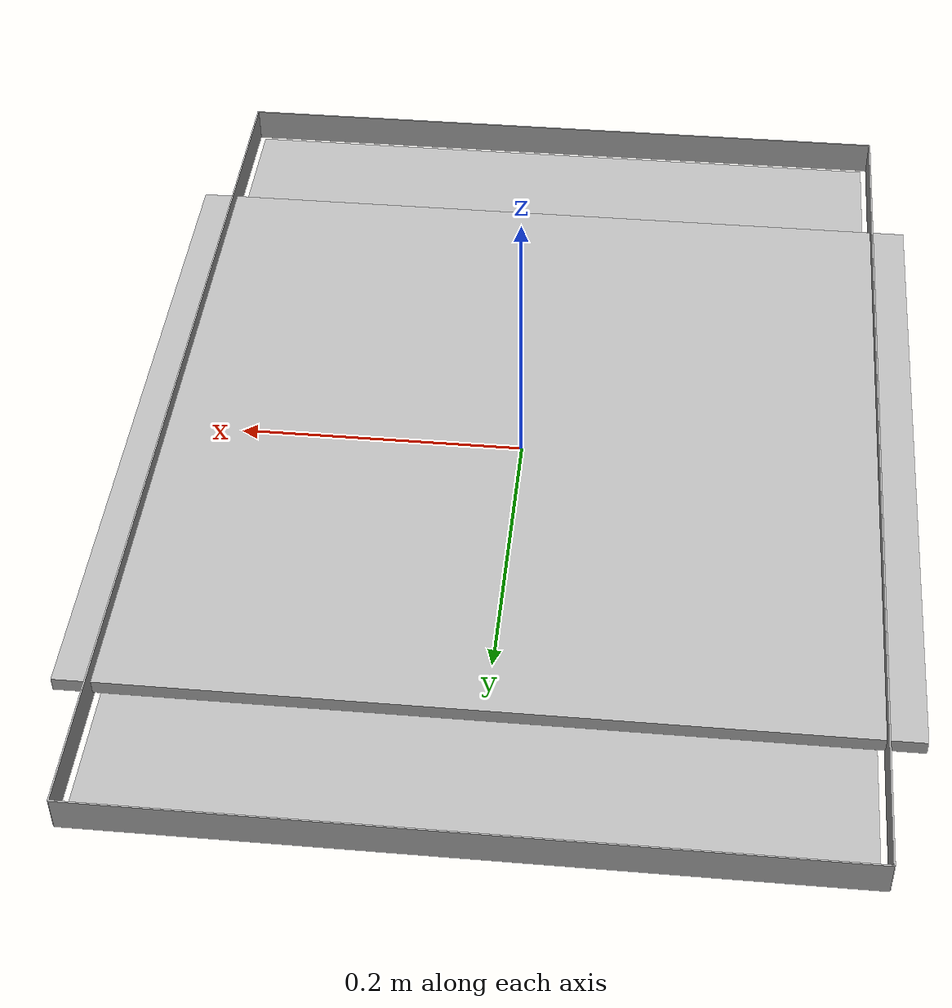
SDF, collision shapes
<?xml version="1.0" ?>
<sdf version="1.6">
<model name="shipping_box_ariac">
    <allow_auto_disable>0</allow_auto_disable>
      <static>false</static>
    <!-- add the model for the structure (no sensors) -->
      <include>
        <name>box</name>
        <uri>model://open_box</uri>
      </include>

    <!-- add a link that is sensing collisions (the bottom of the box) -->
    <link name="bottom_link">
      <pose frame=''>0 0 0.01 0 0 0</pose>
      <gravity>false</gravity>
      <collision name="box_collision">
        <max_contacts>10</max_contacts>
        <surface>
          <contact>
            <ode>
              <max_vel>0.0</max_vel>
              <min_depth>0.001</min_depth>
            </ode>
          </contact>
        </surface>
        <geometry>
          <box>
            <size>0.55 0.5 0.01</size>
          </box>
        </geometry>
      </collision>
      <visual name='visual'>
        <!-- make invisible -->
        <transparency>100</transparency>
        <geometry>
          <box>
            <size>0.55 0.5 0.01</size>
          </box>
        </geometry>
        <cast_shadows>0</cast_shadows>
      </visual>
      <sensor name='box_contact' type='contact'>
        <update_rate>1</update_rate>
        <contact>
          <collision>box_collision</collision>
        </contact>
      </sensor>
    </link>

    <!-- create a joint to the link that is the one sensing collisions -->
    <joint name="joint_link_bottom_link" type="fixed">
      <parent>bottom_link</parent>
      <child>box::link</child>
    </joint>

    <!-- plugin for processing contact sensor output -->
    </model>

</sdf>

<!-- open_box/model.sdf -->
<sdf version="1.6">
  <model name="open_box">
    <static>false</static>
    <self_collide>0</self_collide>
    <link name="box_base">
      <gravity>true</gravity>
      <inertial>
        <mass>1</mass>
        <inertia>
          <ixx>0.0408</ixx>
          <ixy>0</ixy>
          <ixz>0</ixz>
          <iyy>0.02084</iyy>
          <iyz>0</iyz>
          <izz>0.0616</izz>
        </inertia>
      </inertial>

      <sensor name='shipping_box_contact' type='contact'>
        <update_rate>1</update_rate>
        <contact>
          <collision>box_base</collision>
        </contact>
      </sensor>

      <collision name="box_base">
        <pose>0.0 0 0.0015 0 0 0</pose>
        <max_contacts>10</max_contacts>
        <surface>
          <contact>
            <ode>
              <max_vel>0.0</max_vel>
              <min_depth>0.001</min_depth>
            </ode>
          </contact>
        </surface>
        <geometry>
          <box>
            <size>0.49 0.69 0.001</size>
          </box>
        </geometry>
      </collision>

      <collision name="box_bottom">
        <pose>0.0 0 0.0005 0 0 0</pose>
        <max_contacts>10</max_contacts>
        <surface>
          <contact>
            <ode>
              <max_vel>0.0</max_vel>
              <min_depth>0.001</min_depth>
            </ode>
          </contact>
        </surface>
        <geometry>
          <box>
            <size>0.49 0.69 0.001</size>
          </box>
        </geometry>
      </collision>

      <collision name="tray_collision1">
        <pose>0.25 0 0.0127 0 0 0</pose>
        <max_contacts>10</max_contacts>
        <surface>
          <contact>
            <ode>
              <max_vel>0.0</max_vel>
              <min_depth>0.001</min_depth>
            </ode>
          </contact>
        </surface>
        <geometry>
          <box>
            <size>0.001 0.7 0.0254</size>
          </box>
        </geometry>
      </collision>

      <collision name="tray_collision2">
        <pose>-0.25 0 0.0127 0 0 0</pose>
        <max_contacts>10</max_contacts>
        <surface>
          <contact>
            <ode>
              <max_vel>0.0</max_vel>
              <min_depth>0.001</min_depth>
            </ode>
          </contact>
        </surface>
        <geometry>
          <box>
            <size>0.001 0.7 0.0254</size>
          </box>
        </geometry>
      </collision>

      <collision name="tray_collision3">
        <pose>0 0.35 0.0127 0 0 0</pose>
        <max_contacts>10</max_contacts>
        <surface>
          <contact>
            <ode>
              <max_vel>0.0</max_vel>
              <min_depth>0.001</min_depth>
            </ode>
          </contact>
        </surface>
        <geometry>
          <box>
            <size>0.5 0.001 0.0254</size>
          </box>
        </geometry>
      </collision>

      <collision name="tray_collision4">
        <pose>0 -0.35 0.0127 0 0 0</pose>
        <max_contacts>10</max_contacts>
        <surface>
          <contact>
            <ode>
              <max_vel>0.0</max_vel>
              <min_depth>0.001</min_depth>
            </ode>
          </contact>
        </surface>
        <geometry>
          <box>
            <size>0.5 0.001 0.0254</size>
          </box>
        </geometry>
      </collision>

      <visual name="open_box">
        <geometry>
          <mesh>
            <scale>1.1 1.8 0.25</scale>
            <uri>model://open_box/meshes/open_box.obj</uri>
          </mesh>
        </geometry>
        <plugin name="toggle" filename="libToggleVisualPlugin.so">
          <initially_visible>true</initially_visible>
          <topic>~/shipping_box_visual_toggle</topic>
        </plugin>
      </visual>

      <visual name="closed_box">
        <geometry>
          <mesh>
            <scale>1.1 1.8 0.25</scale>
            <uri>model://closed_box/meshes/closed_box.obj</uri>
          </mesh>
        </geometry>
        <plugin name="toggle" filename="libToggleVisualPlugin.so">
          <initially_visible>false</initially_visible>
          <topic>~/shipping_box_visual_toggle</topic>
        </plugin>
      </visual>

    </link>
  </model>
</sdf>
